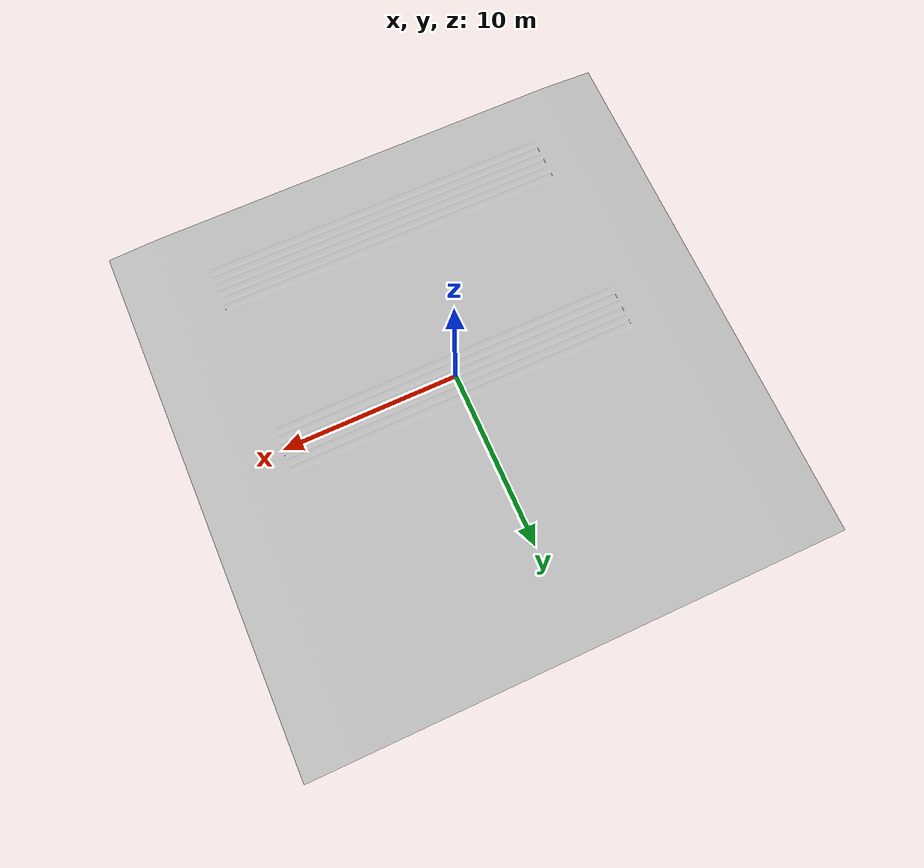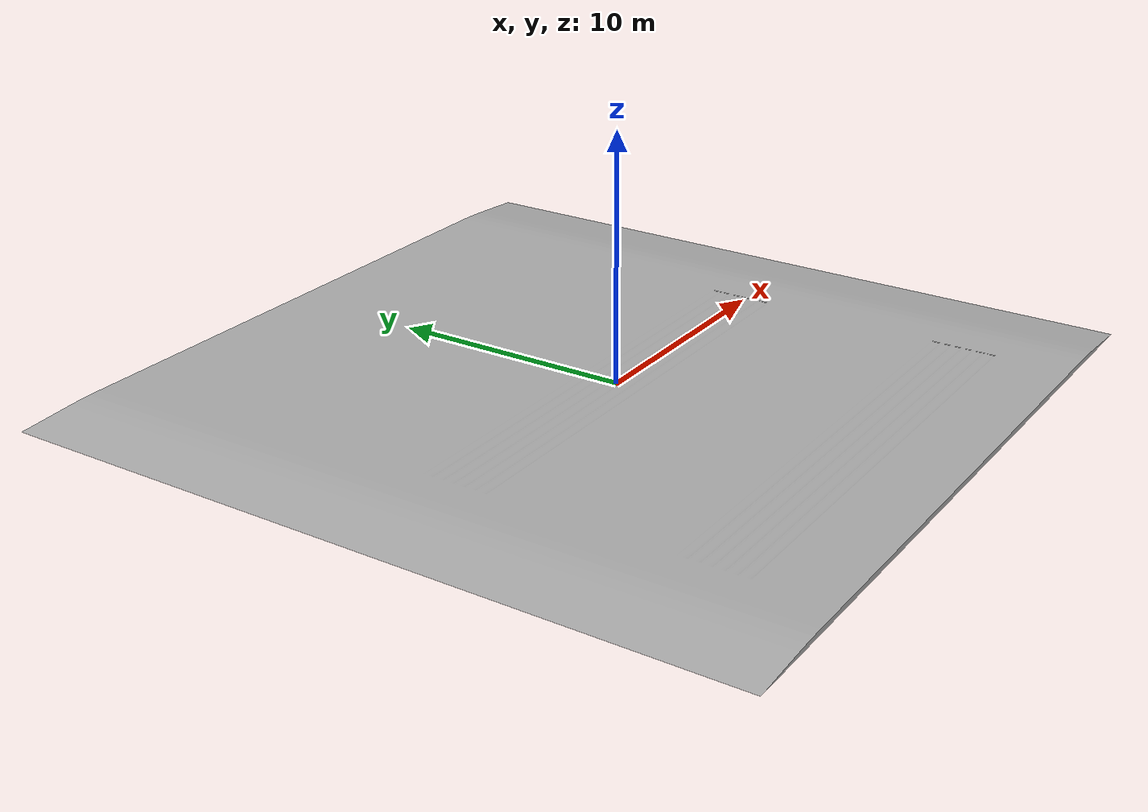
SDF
<?xml version="1.0" ?>
<sdf version="1.5">
    <model name="heightmap">
      <static>true</static>
      <link name="link">
        <collision name="collision">
          <pose>0 0 -0.05  -1.5705 0 0</pose>
          <geometry>
            <mesh>
              <uri>model://heightmap/meshes/ground_3.dae</uri>
            </mesh>
          </geometry>

        </collision>

        <visual name="visual_abcedf">
          <pose>0 0 -0.05 -1.5705 0 0</pose>
          <geometry>
            <mesh>
              <uri>model://heightmap/meshes/ground_3.dae</uri>
            </mesh>
          </geometry>
        </visual>
      </link>
    </model>
</sdf>
